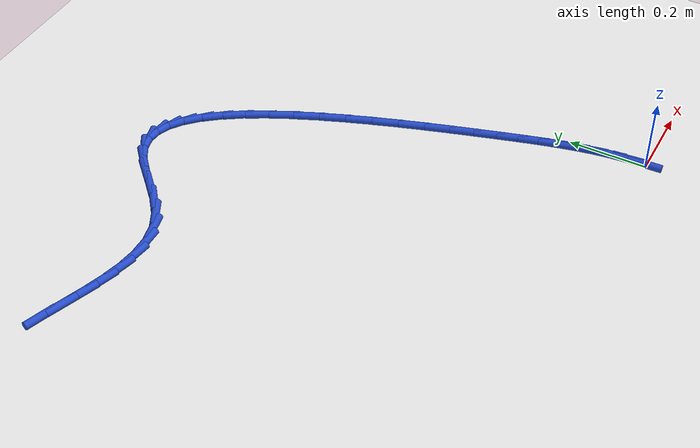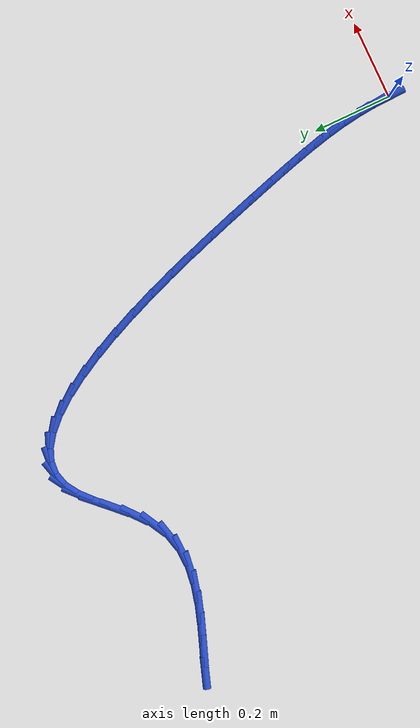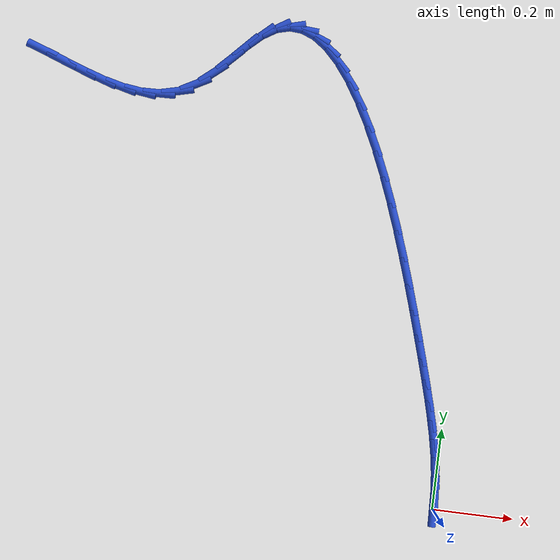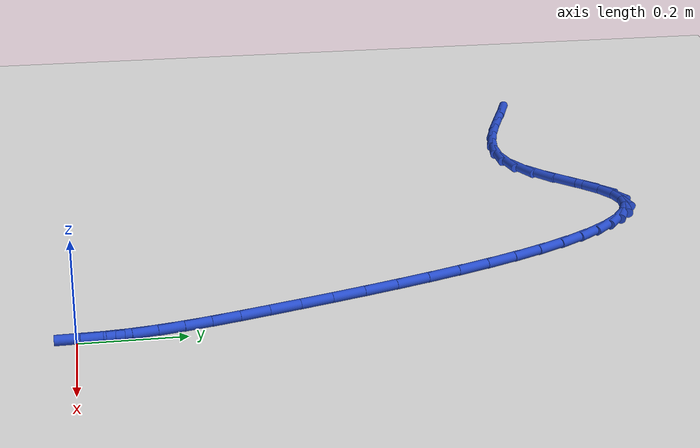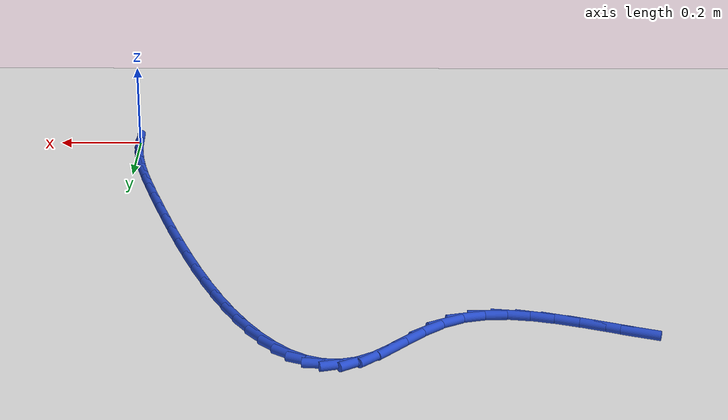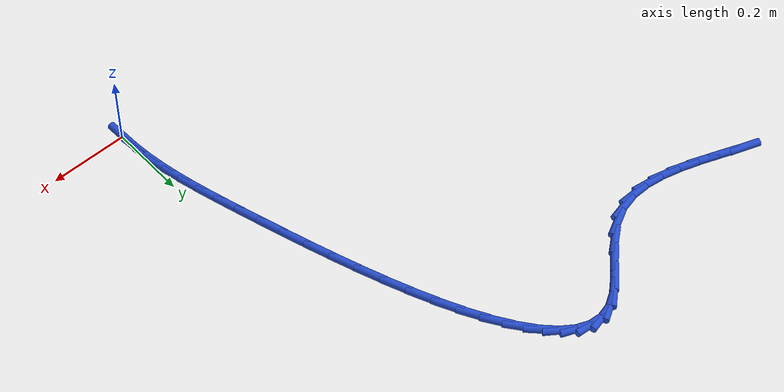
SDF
<sdf version="1.6">
 <world name="default">
  <model name="ground_plane">
   <static>1</static>
   <link name="link">
    <collision name="collision">
     <geometry><plane><normal>0 0 1</normal><size>100 100</size></plane></geometry>
     <surface><friction><ode><mu>100</mu><mu2>50</mu2></ode></friction></surface>
    </collision>
    <visual name="visual">
     <cast_shadows>0</cast_shadows>
     <geometry><plane><normal>0 0 1</normal><size>100 100</size></plane></geometry>
     <material>
      <script><uri>file://media/materials/scripts/gazebo.material</uri><name>Gazebo/WhiteGlow</name></script>
     </material>
    </visual>
   </link>
  </model>
  <model name="line">
   <link name="link_0">
    <pose>6.938893903907228e-18 -3.469446951953614e-17 0.01 0 1.57 -1.5360227060647844</pose>
    <collision name="collision">
     <geometry><cylinder><radius>0.01</radius><length>0.08</length></cylinder></geometry>
    </collision>
    <visual name="visual">
     <material>
      <script><name>Gazebo/Blue</name><uri>file://media/materials/scripts/gazebo.material</uri></script>
     </material>
     <geometry><cylinder><radius>0.01</radius><length>0.08</length></cylinder></geometry>
    </visual>
   </link>
   <link name="link_1">
    <pose>-0.001596986714151066 0.04590672280092305 0.01 0 1.57 -1.475857038576187</pose>
    <collision name="collision">
     <geometry><cylinder><radius>0.01</radius><length>0.08</length></cylinder></geometry>
    </collision>
    <visual name="visual">
     <material>
      <script><name>Gazebo/Blue</name><uri>file://media/materials/scripts/gazebo.material</uri></script>
     </material>
     <geometry><cylinder><radius>0.01</radius><length>0.08</length></cylinder></geometry>
    </visual>
   </link>
   <link name="link_2">
    <pose>-0.005926904175951218 0.09137683878145414 0.01 0 1.57 -1.4215657157220285</pose>
    <collision name="collision">
     <geometry><cylinder><radius>0.01</radius><length>0.08</length></cylinder></geometry>
    </collision>
    <visual name="visual">
     <material>
      <script><name>Gazebo/Blue</name><uri>file://media/materials/scripts/gazebo.material</uri></script>
     </material>
     <geometry><cylinder><radius>0.01</radius><length>0.08</length></cylinder></geometry>
    </visual>
   </link>
   <link name="link_3">
    <pose>-0.012789451862567226 0.1370211565264232 0.01 0 1.57 -1.3752858160505892</pose>
    <collision name="collision">
     <geometry><cylinder><radius>0.01</radius><length>0.08</length></cylinder></geometry>
    </collision>
    <visual name="visual">
     <material>
      <script><name>Gazebo/Blue</name><uri>file://media/materials/scripts/gazebo.material</uri></script>
     </material>
     <geometry><cylinder><radius>0.01</radius><length>0.08</length></cylinder></geometry>
    </visual>
   </link>
   <link name="link_4">
    <pose>-0.02198432925116582 0.18345048462065977 0.01 0 1.57 -1.3382414032701597</pose>
    <collision name="collision">
     <geometry><cylinder><radius>0.01</radius><length>0.08</length></cylinder></geometry>
    </collision>
    <visual name="visual">
     <material>
      <script><name>Gazebo/Blue</name><uri>file://media/materials/scripts/gazebo.material</uri></script>
     </material>
     <geometry><cylinder><radius>0.01</radius><length>0.08</length></cylinder></geometry>
    </visual>
   </link>
   <link name="link_5">
    <pose>-0.033311235818913786 0.23127563164899403 0.01 0 1.57 -1.3107530400348604</pose>
    <collision name="collision">
     <geometry><cylinder><radius>0.01</radius><length>0.08</length></cylinder></geometry>
    </collision>
    <visual name="visual">
     <material>
      <script><name>Gazebo/Blue</name><uri>file://media/materials/scripts/gazebo.material</uri></script>
     </material>
     <geometry><cylinder><radius>0.01</radius><length>0.08</length></cylinder></geometry>
    </visual>
   </link>
   <link name="link_6">
    <pose>-0.046569871042977884 0.28110740619625574 0.01 0 1.57 -1.2924160326424814</pose>
    <collision name="collision">
     <geometry><cylinder><radius>0.01</radius><length>0.08</length></cylinder></geometry>
    </collision>
    <visual name="visual">
     <material>
      <script><name>Gazebo/Blue</name><uri>file://media/materials/scripts/gazebo.material</uri></script>
     </material>
     <geometry><cylinder><radius>0.01</radius><length>0.08</length></cylinder></geometry>
    </visual>
   </link>
   <link name="link_7">
    <pose>-0.06155993440052483 0.33355661684727456 0.01 0 1.57 -1.2823393863077601</pose>
    <collision name="collision">
     <geometry><cylinder><radius>0.01</radius><length>0.08</length></cylinder></geometry>
    </collision>
    <visual name="visual">
     <material>
      <script><name>Gazebo/Blue</name><uri>file://media/materials/scripts/gazebo.material</uri></script>
     </material>
     <geometry><cylinder><radius>0.01</radius><length>0.08</length></cylinder></geometry>
    </visual>
   </link>
   <link name="link_8">
    <pose>-0.078081163734985 0.3892336880036387 0.01 0 1.57 -1.2771850774956366</pose>
    <collision name="collision">
     <geometry><cylinder><radius>0.01</radius><length>0.08</length></cylinder></geometry>
    </collision>
    <visual name="visual">
     <material>
      <script><name>Gazebo/Blue</name><uri>file://media/materials/scripts/gazebo.material</uri></script>
     </material>
     <geometry><cylinder><radius>0.01</radius><length>0.08</length></cylinder></geometry>
    </visual>
   </link>
   <link name="link_9">
    <pose>-0.09596863491986994 0.4483951842516145 0.01 0 1.57 -1.2701571357892643</pose>
    <collision name="collision">
     <geometry><cylinder><radius>0.01</radius><length>0.08</length></cylinder></geometry>
    </collision>
    <visual name="visual">
     <material>
      <script><name>Gazebo/Blue</name><uri>file://media/materials/scripts/gazebo.material</uri></script>
     </material>
     <geometry><cylinder><radius>0.01</radius><length>0.08</length></cylinder></geometry>
    </visual>
   </link>
   <link name="link_10">
    <pose>-0.11515811464164638 0.5102893957378598 0.01 0 1.57 -1.2602094298435773</pose>
    <collision name="collision">
     <geometry><cylinder><radius>0.01</radius><length>0.08</length></cylinder></geometry>
    </collision>
    <visual name="visual">
     <material>
      <script><name>Gazebo/Blue</name><uri>file://media/materials/scripts/gazebo.material</uri></script>
     </material>
     <geometry><cylinder><radius>0.01</radius><length>0.08</length></cylinder></geometry>
    </visual>
   </link>
   <link name="link_11">
    <pose>-0.13560318512456432 0.5739862154857245 0.01 0 1.57 -1.2472190408617878</pose>
    <collision name="collision">
     <geometry><cylinder><radius>0.01</radius><length>0.08</length></cylinder></geometry>
    </collision>
    <visual name="visual">
     <material>
      <script><name>Gazebo/Blue</name><uri>file://media/materials/scripts/gazebo.material</uri></script>
     </material>
     <geometry><cylinder><radius>0.01</radius><length>0.08</length></cylinder></geometry>
    </visual>
   </link>
   <link name="link_12">
    <pose>-0.1572574285928738 0.6385555365185587 0.01 0 1.57 -1.2308400575151817</pose>
    <collision name="collision">
     <geometry><cylinder><radius>0.01</radius><length>0.08</length></cylinder></geometry>
    </collision>
    <visual name="visual">
     <material>
      <script><name>Gazebo/Blue</name><uri>file://media/materials/scripts/gazebo.material</uri></script>
     </material>
     <geometry><cylinder><radius>0.01</radius><length>0.08</length></cylinder></geometry>
    </visual>
   </link>
   <link name="link_13">
    <pose>-0.1800744272708248 0.7030672518597121 0.01 0 1.57 -1.210483083315057</pose>
    <collision name="collision">
     <geometry><cylinder><radius>0.01</radius><length>0.08</length></cylinder></geometry>
    </collision>
    <visual name="visual">
     <material>
      <script><name>Gazebo/Blue</name><uri>file://media/materials/scripts/gazebo.material</uri></script>
     </material>
     <geometry><cylinder><radius>0.01</radius><length>0.08</length></cylinder></geometry>
    </visual>
   </link>
   <link name="link_14">
    <pose>-0.20400776338266735 0.7665912545325347 0.01 0 1.57 -1.1852516564873345</pose>
    <collision name="collision">
     <geometry><cylinder><radius>0.01</radius><length>0.08</length></cylinder></geometry>
    </collision>
    <visual name="visual">
     <material>
      <script><name>Gazebo/Blue</name><uri>file://media/materials/scripts/gazebo.material</uri></script>
     </material>
     <geometry><cylinder><radius>0.01</radius><length>0.08</length></cylinder></geometry>
    </visual>
   </link>
   <link name="link_15">
    <pose>-0.2290110191526514 0.8281974375603767 0.01 0 1.57 -1.153823643787537</pose>
    <collision name="collision">
     <geometry><cylinder><radius>0.01</radius><length>0.08</length></cylinder></geometry>
    </collision>
    <visual name="visual">
     <material>
      <script><name>Gazebo/Blue</name><uri>file://media/materials/scripts/gazebo.material</uri></script>
     </material>
     <geometry><cylinder><radius>0.01</radius><length>0.08</length></cylinder></geometry>
    </visual>
   </link>
   <link name="link_16">
    <pose>-0.2550377768050271 0.886955693966588 0.01 0 1.57 -1.1142492763704</pose>
    <collision name="collision">
     <geometry><cylinder><radius>0.01</radius><length>0.08</length></cylinder></geometry>
    </collision>
    <visual name="visual">
     <material>
      <script><name>Gazebo/Blue</name><uri>file://media/materials/scripts/gazebo.material</uri></script>
     </material>
     <geometry><cylinder><radius>0.01</radius><length>0.08</length></cylinder></geometry>
    </visual>
   </link>
   <link name="link_17">
    <pose>-0.2820416185640443 0.9419359167745185 0.01 0 1.57 -1.0636131072509345</pose>
    <collision name="collision">
     <geometry><cylinder><radius>0.01</radius><length>0.08</length></cylinder></geometry>
    </collision>
    <visual name="visual">
     <material>
      <script><name>Gazebo/Blue</name><uri>file://media/materials/scripts/gazebo.material</uri></script>
     </material>
     <geometry><cylinder><radius>0.01</radius><length>0.08</length></cylinder></geometry>
    </visual>
   </link>
   <link name="link_18">
    <pose>-0.3099761266539531 0.9922079990075179 0.01 0 1.57 -0.9974706156892011</pose>
    <collision name="collision">
     <geometry><cylinder><radius>0.01</radius><length>0.08</length></cylinder></geometry>
    </collision>
    <visual name="visual">
     <material>
      <script><name>Gazebo/Blue</name><uri>file://media/materials/scripts/gazebo.material</uri></script>
     </material>
     <geometry><cylinder><radius>0.01</radius><length>0.08</length></cylinder></geometry>
    </visual>
   </link>
   <link name="link_19">
    <pose>-0.3387948832990036 1.0368418336889365 0.01 0 1.57 -0.9089335694575578</pose>
    <collision name="collision">
     <geometry><cylinder><radius>0.01</radius><length>0.08</length></cylinder></geometry>
    </collision>
    <visual name="visual">
     <material>
      <script><name>Gazebo/Blue</name><uri>file://media/materials/scripts/gazebo.material</uri></script>
     </material>
     <geometry><cylinder><radius>0.01</radius><length>0.08</length></cylinder></geometry>
    </visual>
   </link>
   <link name="link_20">
    <pose>-0.36845147072344564 1.0749073138421243 0.01 0 1.57 -0.7873487990125905</pose>
    <collision name="collision">
     <geometry><cylinder><radius>0.01</radius><length>0.08</length></cylinder></geometry>
    </collision>
    <visual name="visual">
     <material>
      <script><name>Gazebo/Blue</name><uri>file://media/materials/scripts/gazebo.material</uri></script>
     </material>
     <geometry><cylinder><radius>0.01</radius><length>0.08</length></cylinder></geometry>
    </visual>
   </link>
   <link name="link_21">
    <pose>-0.39889947115152935 1.105474332490431 0.01 0 1.57 -0.6172230626733947</pose>
    <collision name="collision">
     <geometry><cylinder><radius>0.01</radius><length>0.08</length></cylinder></geometry>
    </collision>
    <visual name="visual">
     <material>
      <script><name>Gazebo/Blue</name><uri>file://media/materials/scripts/gazebo.material</uri></script>
     </material>
     <geometry><cylinder><radius>0.01</radius><length>0.08</length></cylinder></geometry>
    </visual>
   </link>
   <link name="link_22">
    <pose>-0.4300924668075048 1.1276127826572069 0.01 0 1.57 -0.38113187126745024</pose>
    <collision name="collision">
     <geometry><cylinder><radius>0.01</radius><length>0.08</length></cylinder></geometry>
    </collision>
    <visual name="visual">
     <material>
      <script><name>Gazebo/Blue</name><uri>file://media/materials/scripts/gazebo.material</uri></script>
     </material>
     <geometry><cylinder><radius>0.01</radius><length>0.08</length></cylinder></geometry>
    </visual>
   </link>
   <link name="link_23">
    <pose>-0.46198403991562165 1.1403925573658011 0.01 0 1.57 -0.07639395772360699</pose>
    <collision name="collision">
     <geometry><cylinder><radius>0.01</radius><length>0.08</length></cylinder></geometry>
    </collision>
    <visual name="visual">
     <material>
      <script><name>Gazebo/Blue</name><uri>file://media/materials/scripts/gazebo.material</uri></script>
     </material>
     <geometry><cylinder><radius>0.01</radius><length>0.08</length></cylinder></geometry>
    </visual>
   </link>
   <link name="link_24">
    <pose>-0.4945277727001304 1.1428835496395648 0.01 0 1.57 0.2574464688038256</pose>
    <collision name="collision">
     <geometry><cylinder><radius>0.01</radius><length>0.08</length></cylinder></geometry>
    </collision>
    <visual name="visual">
     <material>
      <script><name>Gazebo/Blue</name><uri>file://media/materials/scripts/gazebo.material</uri></script>
     </material>
     <geometry><cylinder><radius>0.01</radius><length>0.08</length></cylinder></geometry>
    </visual>
   </link>
   <link name="link_25">
    <pose>-0.5276772473852805 1.134155652501847 0.01 0 1.57 0.5533277248231162</pose>
    <collision name="collision">
     <geometry><cylinder><radius>0.01</radius><length>0.08</length></cylinder></geometry>
    </collision>
    <visual name="visual">
     <material>
      <script><name>Gazebo/Blue</name><uri>file://media/materials/scripts/gazebo.material</uri></script>
     </material>
     <geometry><cylinder><radius>0.01</radius><length>0.08</length></cylinder></geometry>
    </visual>
   </link>
   <link name="link_26">
    <pose>-0.5613906061178655 1.113331140037228 0.01 0 1.57 0.7386219541332962</pose>
    <collision name="collision">
     <geometry><cylinder><radius>0.01</radius><length>0.08</length></cylinder></geometry>
    </collision>
    <visual name="visual">
     <material>
      <script><name>Gazebo/Blue</name><uri>file://media/materials/scripts/gazebo.material</uri></script>
     </material>
     <geometry><cylinder><radius>0.01</radius><length>0.08</length></cylinder></geometry>
    </visual>
   </link>
   <link name="link_27">
    <pose>-0.5958377445448142 1.0819647559505625 0.01 0 1.57 0.8032431050564621</pose>
    <collision name="collision">
     <geometry><cylinder><radius>0.01</radius><length>0.08</length></cylinder></geometry>
    </collision>
    <visual name="visual">
     <material>
      <script><name>Gazebo/Blue</name><uri>file://media/materials/scripts/gazebo.material</uri></script>
     </material>
     <geometry><cylinder><radius>0.01</radius><length>0.08</length></cylinder></geometry>
    </visual>
   </link>
   <link name="link_28">
    <pose>-0.6314854350822103 1.0450215475377622 0.01 0 1.57 0.784899751101055</pose>
    <collision name="collision">
     <geometry><cylinder><radius>0.01</radius><length>0.08</length></cylinder></geometry>
    </collision>
    <visual name="visual">
     <material>
      <script><name>Gazebo/Blue</name><uri>file://media/materials/scripts/gazebo.material</uri></script>
     </material>
     <geometry><cylinder><radius>0.01</radius><length>0.08</length></cylinder></geometry>
    </visual>
   </link>
   <link name="link_29">
    <pose>-0.6688226463902017 1.0077215363423155 0.01 0 1.57 0.6873306710897841</pose>
    <collision name="collision">
     <geometry><cylinder><radius>0.01</radius><length>0.08</length></cylinder></geometry>
    </collision>
    <visual name="visual">
     <material>
      <script><name>Gazebo/Blue</name><uri>file://media/materials/scripts/gazebo.material</uri></script>
     </material>
     <geometry><cylinder><radius>0.01</radius><length>0.08</length></cylinder></geometry>
    </visual>
   </link>
   <link name="link_30">
    <pose>-0.7083383471289351 0.9752847439077099 0.01 0 1.57 0.49031913403567523</pose>
    <collision name="collision">
     <geometry><cylinder><radius>0.01</radius><length>0.08</length></cylinder></geometry>
    </collision>
    <visual name="visual">
     <material>
      <script><name>Gazebo/Blue</name><uri>file://media/materials/scripts/gazebo.material</uri></script>
     </material>
     <geometry><cylinder><radius>0.01</radius><length>0.08</length></cylinder></geometry>
    </visual>
   </link>
   <link name="link_31">
    <pose>-0.7505010735535802 0.9527783587523594 0.01 0 1.57 0.23955699628761407</pose>
    <collision name="collision">
     <geometry><cylinder><radius>0.01</radius><length>0.08</length></cylinder></geometry>
    </collision>
    <visual name="visual">
     <material>
      <script><name>Gazebo/Blue</name><uri>file://media/materials/scripts/gazebo.material</uri></script>
     </material>
     <geometry><cylinder><radius>0.01</radius><length>0.08</length></cylinder></geometry>
    </visual>
   </link>
   <link name="link_32">
    <pose>-0.7953197265283377 0.9418315273577568 0.01 0 1.57 0.02453006478095447</pose>
    <collision name="collision">
     <geometry><cylinder><radius>0.01</radius><length>0.08</length></cylinder></geometry>
    </collision>
    <visual name="visual">
     <material>
      <script><name>Gazebo/Blue</name><uri>file://media/materials/scripts/gazebo.material</uri></script>
     </material>
     <geometry><cylinder><radius>0.01</radius><length>0.08</length></cylinder></geometry>
    </visual>
   </link>
   <link name="link_33">
    <pose>-0.8423492273311957 0.940677659210413 0.01 0 1.57 -0.1370744865808009</pose>
    <collision name="collision">
     <geometry><cylinder><radius>0.01</radius><length>0.08</length></cylinder></geometry>
    </collision>
    <visual name="visual">
     <material>
      <script><name>Gazebo/Blue</name><uri>file://media/materials/scripts/gazebo.material</uri></script>
     </material>
     <geometry><cylinder><radius>0.01</radius><length>0.08</length></cylinder></geometry>
    </visual>
   </link>
   <link name="link_34">
    <pose>-0.8911251960504718 0.9474057921867525 0.01 0 1.57 -0.24844751846264382</pose>
    <collision name="collision">
     <geometry><cylinder><radius>0.01</radius><length>0.08</length></cylinder></geometry>
    </collision>
    <visual name="visual">
     <material>
      <script><name>Gazebo/Blue</name><uri>file://media/materials/scripts/gazebo.material</uri></script>
     </material>
     <geometry><cylinder><radius>0.01</radius><length>0.08</length></cylinder></geometry>
    </visual>
   </link>
   <link name="link_35">
    <pose>-0.9411832527744834 0.9601049641631992 0.01 0 1.57 -0.3182200745731671</pose>
    <collision name="collision">
     <geometry><cylinder><radius>0.01</radius><length>0.08</length></cylinder></geometry>
    </collision>
    <visual name="visual">
     <material>
      <script><name>Gazebo/Blue</name><uri>file://media/materials/scripts/gazebo.material</uri></script>
     </material>
     <geometry><cylinder><radius>0.01</radius><length>0.08</length></cylinder></geometry>
    </visual>
   </link>
   <link name="link_36">
    <pose>-0.9920590175915496 0.9768642130161781 0.01 0 1.57 -0.3535829995147514</pose>
    <collision name="collision">
     <geometry><cylinder><radius>0.01</radius><length>0.08</length></cylinder></geometry>
    </collision>
    <visual name="visual">
     <material>
      <script><name>Gazebo/Blue</name><uri>file://media/materials/scripts/gazebo.material</uri></script>
     </material>
     <geometry><cylinder><radius>0.01</radius><length>0.08</length></cylinder></geometry>
    </visual>
   </link>
   <link name="link_37">
    <pose>-1.0432881105899872 0.995772576622113 0.01 0 1.57 -0.35838044684975473</pose>
    <collision name="collision">
     <geometry><cylinder><radius>0.01</radius><length>0.08</length></cylinder></geometry>
    </collision>
    <visual name="visual">
     <material>
      <script><name>Gazebo/Blue</name><uri>file://media/materials/scripts/gazebo.material</uri></script>
     </material>
     <geometry><cylinder><radius>0.01</radius><length>0.08</length></cylinder></geometry>
    </visual>
   </link>
   <link name="link_38">
    <pose>-1.0944061518581147 1.0149190928574288 0.01 0 1.57 -0.3331332674719621</pose>
    <collision name="collision">
     <geometry><cylinder><radius>0.01</radius><length>0.08</length></cylinder></geometry>
    </collision>
    <visual name="visual">
     <material>
      <script><name>Gazebo/Blue</name><uri>file://media/materials/scripts/gazebo.material</uri></script>
     </material>
     <geometry><cylinder><radius>0.01</radius><length>0.08</length></cylinder></geometry>
    </visual>
   </link>
   <link name="link_161">
    <pose>-0.0016584867142025693 0.04577389700165744 0.01 0 1.57 -1.5345800188683059</pose>
    <collision name="collision">
     <geometry><cylinder><radius>0.01</radius><length>0.08</length></cylinder></geometry>
    </collision>
    <visual name="visual">
     <material>
      <script><name>Gazebo/Blue</name><uri>file://media/materials/scripts/gazebo.material</uri></script>
     </material>
     <geometry><cylinder><radius>0.01</radius><length>0.08</length></cylinder></geometry>
    </visual>
   </link>
  </model>
 </world>
</sdf>
